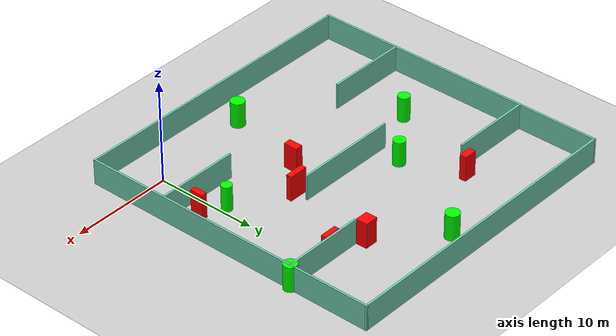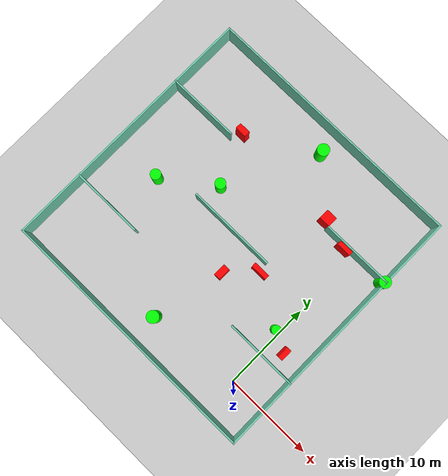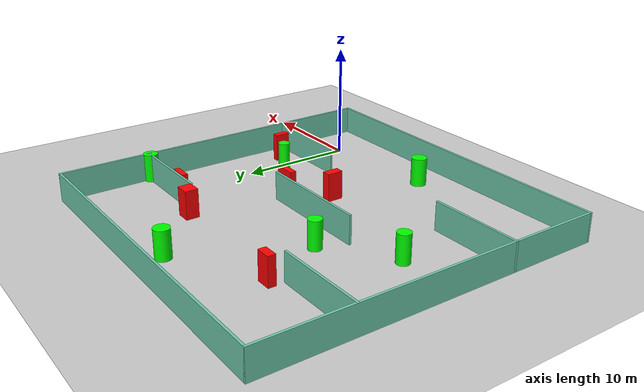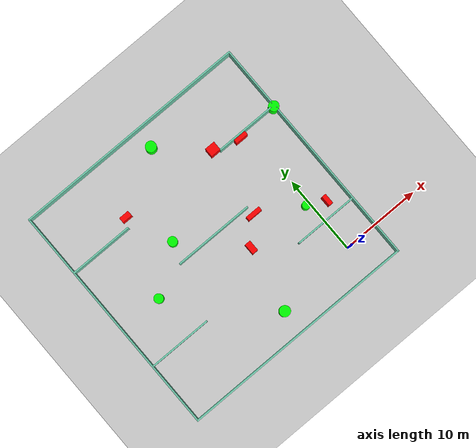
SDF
<sdf version="1.7">
 <world name="default">
  <light name="sun" type="directional">
   <pose>0 0 10 0 -0 0</pose>
   <diffuse>0.8 0.8 0.8 1</diffuse>
   <specular>0.2 0.2 0.2 1</specular>
   <attenuation>
    <range>1000</range>
    <constant>0.9</constant>
    <linear>0.01</linear>
    <quadratic>0.001</quadratic>
   </attenuation>
   <direction>-0.5 0.1 -0.9</direction>
   <spot><inner_angle>0</inner_angle><outer_angle>0</outer_angle><falloff>0</falloff></spot>
  </light>
  <model name="ground_plane">
   <static>1</static>
   <link name="link">
    <collision name="collision">
     <geometry><plane><normal>0 0 1</normal><size>100 100</size></plane></geometry>
     <surface>
      <contact><collide_bitmask>65535</collide_bitmask></contact>
      <friction><ode><mu>100</mu><mu2>50</mu2></ode></friction>
     </surface>
    </collision>
    <visual name="visual">
     <cast_shadows>0</cast_shadows>
     <geometry><plane><normal>0 0 1</normal><size>100 100</size></plane></geometry>
     <material>
      <script><uri>file://media/materials/scripts/gazebo.material</uri><name>Gazebo/Grey</name></script>
     </material>
    </visual>
   </link>
  </model>
  <gravity>0 0 -9.8</gravity>
  <magnetic_field>6e-06 2.3e-05 -4.2e-05</magnetic_field>
  <atmosphere type="adiabatic"/>
  <physics type="ode">
   <max_step_size>0.001</max_step_size>
   <real_time_factor>1</real_time_factor>
   <real_time_update_rate>1000</real_time_update_rate>
  </physics>
  <scene><ambient>0.4 0.4 0.4 1</ambient><background>0.7 0.7 0.7 1</background><shadows>1</shadows></scene>
  <spherical_coordinates>
   <surface_model>EARTH_WGS84</surface_model>
   <latitude_deg>0</latitude_deg>
   <longitude_deg>0</longitude_deg>
   <elevation>0</elevation>
   <heading_deg>0</heading_deg>
  </spherical_coordinates>
  <model name="my_base_walls">
   <link name="Wall_10">
    <collision name="Wall_10_Collision">
     <geometry><box><size>8.2 0.2 2.5</size></box></geometry>
     <pose>0 0 1.25 0 -0 0</pose>
    </collision>
    <visual name="Wall_10_Visual">
     <pose>0 0 1.25 0 -0 0</pose>
     <geometry><box><size>8.2 0.2 2.5</size></box></geometry>
     <material>
      <script><uri>file://media/materials/scripts/gazebo.material</uri><name>Gazebo/Grey</name></script>
      <ambient>0.435294 0.796078 0.67451 1</ambient>
     </material>
     <meta><layer>0</layer></meta>
    </visual>
    <pose>-11 -7 0 0 -0 0</pose>
   </link>
   <link name="Wall_12">
    <collision name="Wall_12_Collision">
     <geometry><box><size>8.2 0.2 2.5</size></box></geometry>
     <pose>0 0 1.25 0 -0 0</pose>
    </collision>
    <visual name="Wall_12_Visual">
     <pose>0 0 1.25 0 -0 0</pose>
     <geometry><box><size>8.2 0.2 2.5</size></box></geometry>
     <material>
      <script><uri>file://media/materials/scripts/gazebo.material</uri><name>Gazebo/Grey</name></script>
      <ambient>0.435294 0.796078 0.67451 1</ambient>
     </material>
     <meta><layer>0</layer></meta>
    </visual>
    <pose>-11 7 0 0 -0 0</pose>
   </link>
   <link name="Wall_14">
    <collision name="Wall_14_Collision">
     <geometry><box><size>8.2 0.2 2.5</size></box></geometry>
     <pose>0 0 1.25 0 -0 0</pose>
    </collision>
    <visual name="Wall_14_Visual">
     <pose>0 0 1.25 0 -0 0</pose>
     <geometry><box><size>8.2 0.2 2.5</size></box></geometry>
     <material>
      <script><uri>file://media/materials/scripts/gazebo.material</uri><name>Gazebo/Grey</name></script>
      <ambient>0.435294 0.796078 0.67451 1</ambient>
     </material>
     <meta><layer>0</layer></meta>
    </visual>
    <pose>11 7 0 0 -0 3.14159</pose>
   </link>
   <link name="Wall_16">
    <collision name="Wall_16_Collision">
     <geometry><box><size>10.2 0.2 2.5</size></box></geometry>
     <pose>0 0 1.25 0 -0 0</pose>
    </collision>
    <visual name="Wall_16_Visual">
     <pose>0 0 1.25 0 -0 0</pose>
     <geometry><box><size>10.2 0.2 2.5</size></box></geometry>
     <material>
      <script><uri>file://media/materials/scripts/gazebo.material</uri><name>Gazebo/Grey</name></script>
      <ambient>0.435294 0.796078 0.67451 1</ambient>
     </material>
     <meta><layer>0</layer></meta>
    </visual>
    <pose>0 0 0 0 -0 3.14159</pose>
   </link>
   <link name="Wall_2">
    <collision name="Wall_2_Collision">
     <geometry><box><size>30.2 0.2 2.5</size></box></geometry>
     <pose>0 0 1.25 0 -0 0</pose>
    </collision>
    <visual name="Wall_2_Visual">
     <pose>0 0 1.25 0 -0 0</pose>
     <geometry><box><size>30.2 0.2 2.5</size></box></geometry>
     <material>
      <script><uri>file://media/materials/scripts/gazebo.material</uri><name>Gazebo/Grey</name></script>
      <ambient>0.435294 0.796078 0.67451 1</ambient>
     </material>
     <meta><layer>0</layer></meta>
    </visual>
    <pose>0 -15 0 0 -0 3.14159</pose>
   </link>
   <link name="Wall_3">
    <collision name="Wall_3_Collision">
     <geometry><box><size>30.2 0.2 2.5</size></box></geometry>
     <pose>0 0 1.25 0 -0 0</pose>
    </collision>
    <visual name="Wall_3_Visual">
     <pose>0 0 1.25 0 -0 0</pose>
     <geometry><box><size>30.2 0.2 2.5</size></box></geometry>
     <material>
      <script><uri>file://media/materials/scripts/gazebo.material</uri><name>Gazebo/Grey</name></script>
      <ambient>0.435294 0.796078 0.67451 1</ambient>
     </material>
     <meta><layer>0</layer></meta>
    </visual>
    <pose>-15 0 0 0 -0 1.5708</pose>
   </link>
   <link name="Wall_4">
    <collision name="Wall_4_Collision">
     <geometry><box><size>30.2 0.2 2.5</size></box></geometry>
     <pose>0 0 1.25 0 -0 0</pose>
    </collision>
    <visual name="Wall_4_Visual">
     <pose>0 0 1.25 0 -0 0</pose>
     <geometry><box><size>30.2 0.2 2.5</size></box></geometry>
     <material>
      <script><uri>file://media/materials/scripts/gazebo.material</uri><name>Gazebo/Grey</name></script>
      <ambient>0.435294 0.796078 0.67451 1</ambient>
     </material>
     <meta><layer>0</layer></meta>
    </visual>
    <pose>0 15 0 0 -0 0</pose>
   </link>
   <link name="Wall_6">
    <collision name="Wall_6_Collision">
     <geometry><box><size>30.2 0.2 2.5</size></box></geometry>
     <pose>0 0 1.25 0 -0 0</pose>
    </collision>
    <visual name="Wall_6_Visual">
     <pose>0 0 1.25 0 -0 0</pose>
     <geometry><box><size>30.2 0.2 2.5</size></box></geometry>
     <material>
      <script><uri>file://media/materials/scripts/gazebo.material</uri><name>Gazebo/Grey</name></script>
      <ambient>0.435294 0.796078 0.67451 1</ambient>
     </material>
     <meta><layer>0</layer></meta>
    </visual>
    <pose>15 0 0 0 -0 1.5708</pose>
   </link>
   <link name="Wall_8">
    <collision name="Wall_8_Collision">
     <geometry><box><size>8.2 0.2 2.5</size></box></geometry>
     <pose>0 0 1.25 0 -0 0</pose>
    </collision>
    <visual name="Wall_8_Visual">
     <pose>0 0 1.25 0 -0 0</pose>
     <geometry><box><size>8.2 0.2 2.5</size></box></geometry>
     <material>
      <script><uri>file://media/materials/scripts/gazebo.material</uri><name>Gazebo/Grey</name></script>
      <ambient>0.435294 0.796078 0.67451 1</ambient>
     </material>
     <meta><layer>0</layer></meta>
    </visual>
    <pose>11 -7 0 0 -0 3.14159</pose>
   </link>
   <static>1</static>
   <pose>-11 11 0 0 -0 0</pose>
  </model>
  <model name="cylinder1">
   <static>1</static>
   <link name="link">
    <inertial>
     <mass>1</mass>
     <inertia><ixx>0.5</ixx><ixy>0</ixy><ixz>0</ixz><iyy>0.5</iyy><iyz>0</iyz><izz>1</izz></inertia>
    </inertial>
    <collision name="collision">
     <geometry><cylinder><radius>0.6767604509970875</radius><length>2.5</length></cylinder></geometry>
    </collision>
    <visual name="visual">
     <geometry><cylinder><radius>0.6767604509970875</radius><length>2.5</length></cylinder></geometry>
     <material>
      <ambient>0 1 0 1</ambient>
      <diffuse>0 1 0 1</diffuse>
      <specular>0.1 0.1 0.1 1</specular>
      <emissive>0 0 0 0</emissive>
     </material>
    </visual>
   </link>
   <pose>-9.928387431229178 23.444918011498846 1.25 0 0 0</pose>
  </model>
  <model name="cylinder2">
   <static>1</static>
   <link name="link">
    <inertial>
     <mass>1</mass>
     <inertia><ixx>0.5</ixx><ixy>0</ixy><ixz>0</ixz><iyy>0.5</iyy><iyz>0</iyz><izz>1</izz></inertia>
    </inertial>
    <collision name="collision">
     <geometry><cylinder><radius>0.5103418323853947</radius><length>2.5</length></cylinder></geometry>
    </collision>
    <visual name="visual">
     <geometry><cylinder><radius>0.5103418323853947</radius><length>2.5</length></cylinder></geometry>
     <material>
      <ambient>0 1 0 1</ambient>
      <diffuse>0 1 0 1</diffuse>
      <specular>0.1 0.1 0.1 1</specular>
      <emissive>0 0 0 0</emissive>
     </material>
    </visual>
   </link>
   <pose>-0.6171564635263103 6.8088566326282205 1.25 0 0 0</pose>
  </model>
  <model name="cylinder3">
   <static>1</static>
   <link name="link">
    <inertial>
     <mass>1</mass>
     <inertia><ixx>0.5</ixx><ixy>0</ixy><ixz>0</ixz><iyy>0.5</iyy><iyz>0</iyz><izz>1</izz></inertia>
    </inertial>
    <collision name="collision">
     <geometry><cylinder><radius>0.5870471242319673</radius><length>2.5</length></cylinder></geometry>
    </collision>
    <visual name="visual">
     <geometry><cylinder><radius>0.5870471242319673</radius><length>2.5</length></cylinder></geometry>
     <material>
      <ambient>0 1 0 1</ambient>
      <diffuse>0 1 0 1</diffuse>
      <specular>0.1 0.1 0.1 1</specular>
      <emissive>0 0 0 0</emissive>
     </material>
    </visual>
   </link>
   <pose>-20.466461622644864 9.531362195662611 1.25 0 0 0</pose>
  </model>
  <model name="cylinder4">
   <static>1</static>
   <link name="link">
    <inertial>
     <mass>1</mass>
     <inertia><ixx>0.5</ixx><ixy>0</ixy><ixz>0</ixz><iyy>0.5</iyy><iyz>0</iyz><izz>1</izz></inertia>
    </inertial>
    <collision name="collision">
     <geometry><cylinder><radius>0.6834860040178294</radius><length>2.5</length></cylinder></geometry>
    </collision>
    <visual name="visual">
     <geometry><cylinder><radius>0.6834860040178294</radius><length>2.5</length></cylinder></geometry>
     <material>
      <ambient>0 1 0 1</ambient>
      <diffuse>0 1 0 1</diffuse>
      <specular>0.1 0.1 0.1 1</specular>
      <emissive>0 0 0 0</emissive>
     </material>
    </visual>
   </link>
   <pose>-10.37046896686606 -0.8983915812689482 1.25 0 0 0</pose>
  </model>
  <model name="cylinder5">
   <static>1</static>
   <link name="link">
    <inertial>
     <mass>1</mass>
     <inertia><ixx>0.5</ixx><ixy>0</ixy><ixz>0</ixz><iyy>0.5</iyy><iyz>0</iyz><izz>1</izz></inertia>
    </inertial>
    <collision name="collision">
     <geometry><cylinder><radius>0.6469632076169682</radius><length>2.5</length></cylinder></geometry>
    </collision>
    <visual name="visual">
     <geometry><cylinder><radius>0.6469632076169682</radius><length>2.5</length></cylinder></geometry>
     <material>
      <ambient>0 1 0 1</ambient>
      <diffuse>0 1 0 1</diffuse>
      <specular>0.1 0.1 0.1 1</specular>
      <emissive>0 0 0 0</emissive>
     </material>
    </visual>
   </link>
   <pose>3.8890156708867494 17.910267447792357 1.25 0 0 0</pose>
  </model>
  <model name="cylinder6">
   <static>1</static>
   <link name="link">
    <inertial>
     <mass>1</mass>
     <inertia><ixx>0.5</ixx><ixy>0</ixy><ixz>0</ixz><iyy>0.5</iyy><iyz>0</iyz><izz>1</izz></inertia>
    </inertial>
    <collision name="collision">
     <geometry><cylinder><radius>0.5943789236765509</radius><length>2.5</length></cylinder></geometry>
    </collision>
    <visual name="visual">
     <geometry><cylinder><radius>0.5943789236765509</radius><length>2.5</length></cylinder></geometry>
     <material>
      <ambient>0 1 0 1</ambient>
      <diffuse>0 1 0 1</diffuse>
      <specular>0.1 0.1 0.1 1</specular>
      <emissive>0 0 0 0</emissive>
     </material>
    </visual>
   </link>
   <pose>-15.047262893755558 13.50910654732111 1.25 0 0 0</pose>
  </model>
  <model name="box1">
   <static>1</static>
   <link name="link">
    <inertial>
     <mass>1</mass>
     <inertia><ixx>0.083</ixx><ixy>0</ixy><ixz>0</ixz><iyy>0.083</iyy><iyz>0</iyz><izz>0.083</izz></inertia>
    </inertial>
    <collision name="collision">
     <geometry><box><size>0.5594129868211251 1.3299957957411672 2.5</size></box></geometry>
    </collision>
    <visual name="visual">
     <geometry><box><size>0.5594129868211251 1.3299957957411672 2.5</size></box></geometry>
     <material>
      <ambient>1 0 0 1</ambient>
      <diffuse>1 0 0 1</diffuse>
      <specular>0.1 0.1 0.1 1</specular>
      <emissive>0 0 0 0</emissive>
     </material>
    </visual>
    <sensor name="my_contact" type="contact">
     <contact><collision>box_collision</collision><topic>__default_topic__</topic></contact>
    </sensor>
   </link>
   <pose>1.5932631111183646 5.692137513569119 1.25 0 0 0</pose>
  </model>
  <model name="box2">
   <static>1</static>
   <link name="link">
    <inertial>
     <mass>1</mass>
     <inertia><ixx>0.083</ixx><ixy>0</ixy><ixz>0</ixz><iyy>0.083</iyy><iyz>0</iyz><izz>0.083</izz></inertia>
    </inertial>
    <collision name="collision">
     <geometry><box><size>1.641183351700444 0.5033588730632657 2.5</size></box></geometry>
    </collision>
    <visual name="visual">
     <geometry><box><size>1.641183351700444 0.5033588730632657 2.5</size></box></geometry>
     <material>
      <ambient>1 0 0 1</ambient>
      <diffuse>1 0 0 1</diffuse>
      <specular>0.1 0.1 0.1 1</specular>
      <emissive>0 0 0 0</emissive>
     </material>
    </visual>
    <sensor name="my_contact" type="contact">
     <contact><collision>box_collision</collision><topic>__default_topic__</topic></contact>
    </sensor>
   </link>
   <pose>-1.339473022616204 17.59770466180771 1.25 0 0 0</pose>
  </model>
  <model name="box3">
   <static>1</static>
   <link name="link">
    <inertial>
     <mass>1</mass>
     <inertia><ixx>0.083</ixx><ixy>0</ixy><ixz>0</ixz><iyy>0.083</iyy><iyz>0</iyz><izz>0.083</izz></inertia>
    </inertial>
    <collision name="collision">
     <geometry><box><size>0.7564771571498736 1.4063252132940598 2.5</size></box></geometry>
    </collision>
    <visual name="visual">
     <geometry><box><size>0.7564771571498736 1.4063252132940598 2.5</size></box></geometry>
     <material>
      <ambient>1 0 0 1</ambient>
      <diffuse>1 0 0 1</diffuse>
      <specular>0.1 0.1 0.1 1</specular>
      <emissive>0 0 0 0</emissive>
     </material>
    </visual>
    <sensor name="my_contact" type="contact">
     <contact><collision>box_collision</collision><topic>__default_topic__</topic></contact>
    </sensor>
   </link>
   <pose>-8.5896607420929 7.144438725667474 1.25 0 0 0</pose>
  </model>
  <model name="box4">
   <static>1</static>
   <link name="link">
    <inertial>
     <mass>1</mass>
     <inertia><ixx>0.083</ixx><ixy>0</ixy><ixz>0</ixz><iyy>0.083</iyy><iyz>0</iyz><izz>0.083</izz></inertia>
    </inertial>
    <collision name="collision">
     <geometry><box><size>1.2906179077272042 1.1466617117012525 2.5</size></box></geometry>
    </collision>
    <visual name="visual">
     <geometry><box><size>1.2906179077272042 1.1466617117012525 2.5</size></box></geometry>
     <material>
      <ambient>1 0 0 1</ambient>
      <diffuse>1 0 0 1</diffuse>
      <specular>0.1 0.1 0.1 1</specular>
      <emissive>0 0 0 0</emissive>
     </material>
    </visual>
    <sensor name="my_contact" type="contact">
     <contact><collision>box_collision</collision><topic>__default_topic__</topic></contact>
    </sensor>
   </link>
   <pose>-4.678621600085215 18.63011373582061 1.25 0 0 0</pose>
  </model>
  <model name="box5">
   <static>1</static>
   <link name="link">
    <inertial>
     <mass>1</mass>
     <inertia><ixx>0.083</ixx><ixy>0</ixy><ixz>0</ixz><iyy>0.083</iyy><iyz>0</iyz><izz>0.083</izz></inertia>
    </inertial>
    <collision name="collision">
     <geometry><box><size>1.9032557461652069 0.5412307061532337 2.5</size></box></geometry>
    </collision>
    <visual name="visual">
     <geometry><box><size>1.9032557461652069 0.5412307061532337 2.5</size></box></geometry>
     <material>
      <ambient>1 0 0 1</ambient>
      <diffuse>1 0 0 1</diffuse>
      <specular>0.1 0.1 0.1 1</specular>
      <emissive>0 0 0 0</emissive>
     </material>
    </visual>
    <sensor name="my_contact" type="contact">
     <contact><collision>box_collision</collision><topic>__default_topic__</topic></contact>
    </sensor>
   </link>
   <pose>-5.859212458794492 9.926696058722694 1.25 0 0 0</pose>
  </model>
  <model name="box6">
   <static>1</static>
   <link name="link">
    <inertial>
     <mass>1</mass>
     <inertia><ixx>0.083</ixx><ixy>0</ixy><ixz>0</ixz><iyy>0.083</iyy><iyz>0</iyz><izz>0.083</izz></inertia>
    </inertial>
    <collision name="collision">
     <geometry><box><size>1.3010807759513725 0.6839966888266442 2.5</size></box></geometry>
    </collision>
    <visual name="visual">
     <geometry><box><size>1.3010807759513725 0.6839966888266442 2.5</size></box></geometry>
     <material>
      <ambient>1 0 0 1</ambient>
      <diffuse>1 0 0 1</diffuse>
      <specular>0.1 0.1 0.1 1</specular>
      <emissive>0 0 0 0</emissive>
     </material>
    </visual>
    <sensor name="my_contact" type="contact">
     <contact><collision>box_collision</collision><topic>__default_topic__</topic></contact>
    </sensor>
   </link>
   <pose>-17.3416231468094 19.1338603043686 1.25 0 0 0</pose>
  </model>
 </world>
</sdf>
